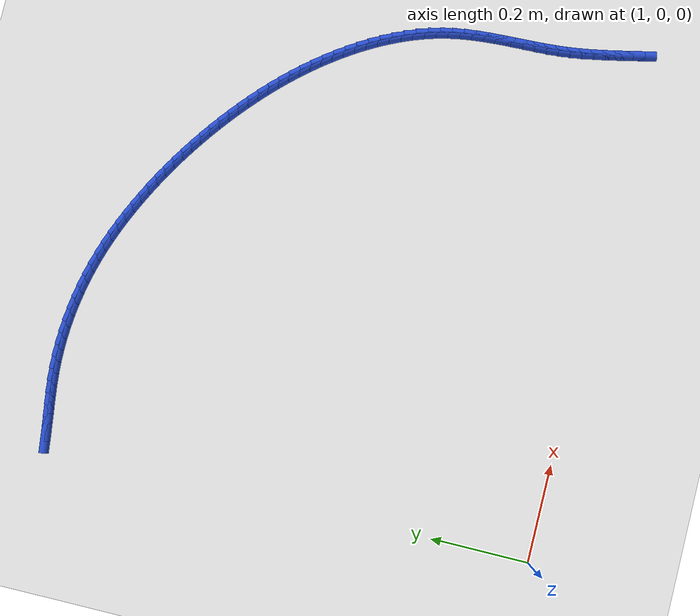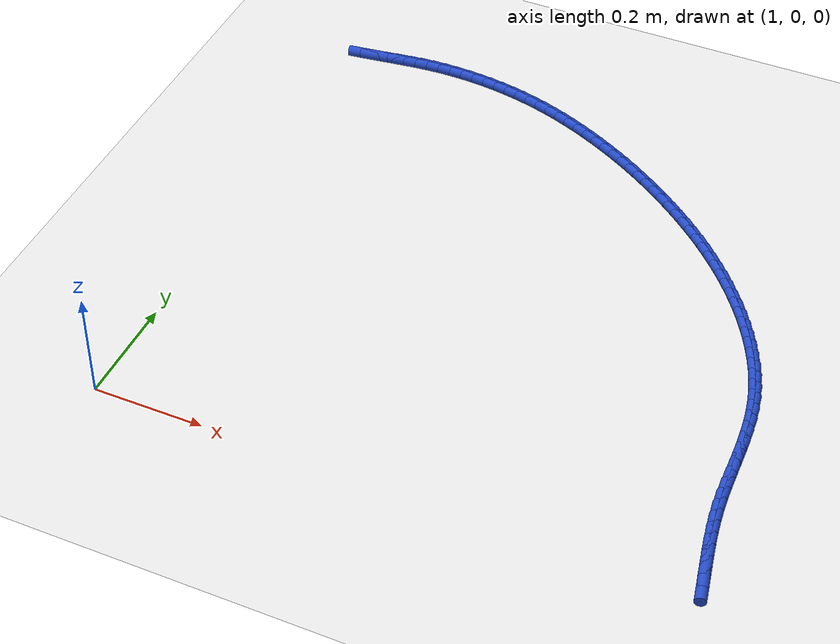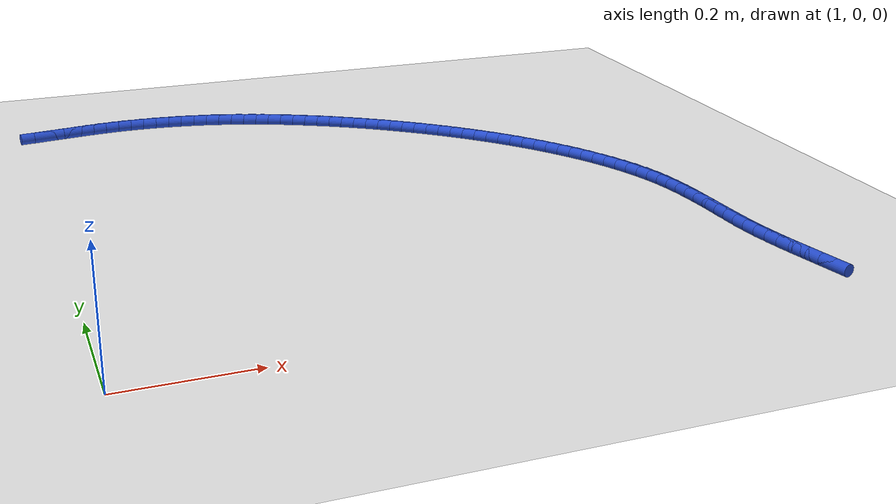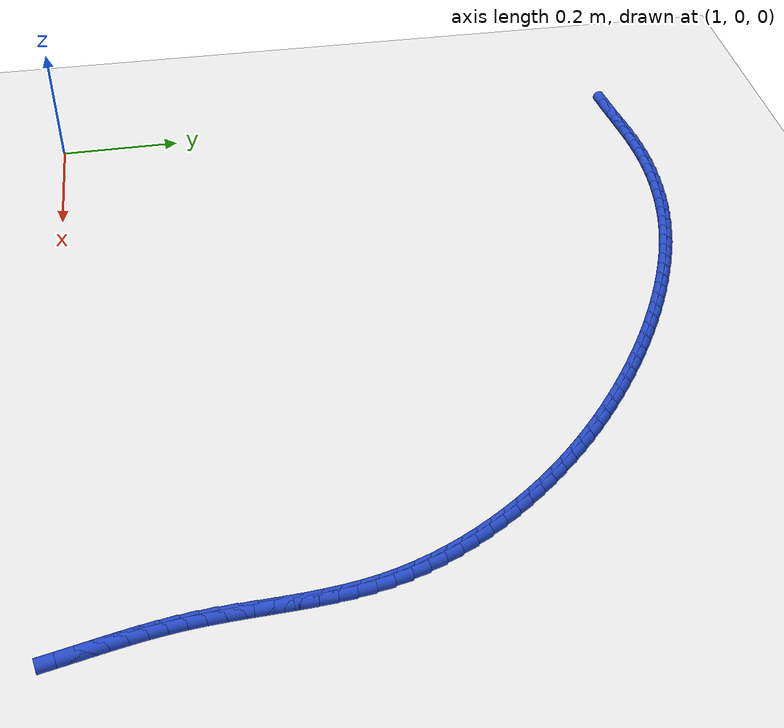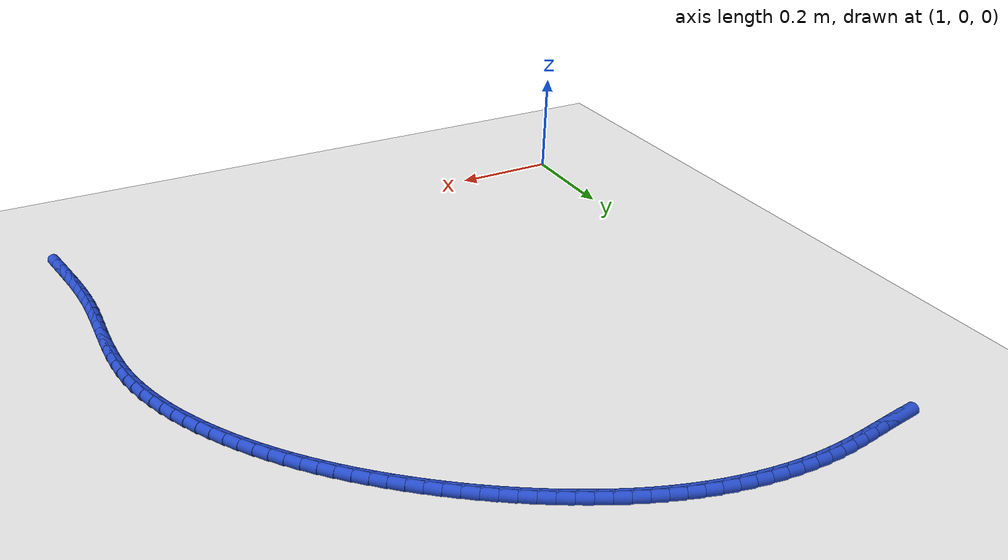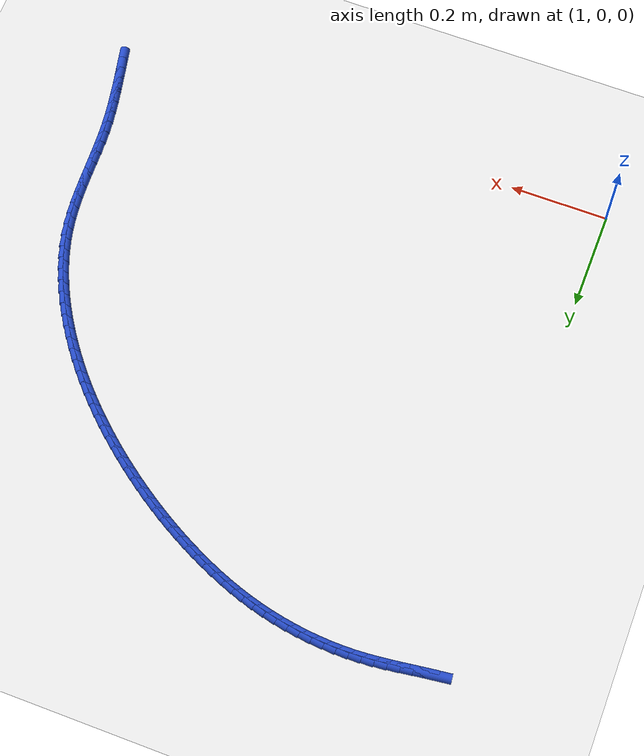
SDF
<sdf version="1.6">
 <world name="default">
  <model name="ground_plane">
   <static>1</static>
   <link name="link">
    <collision name="collision">
     <geometry><plane><normal>0 0 1</normal><size>100 100</size></plane></geometry>
     <surface><friction><ode><mu>100</mu><mu2>50</mu2></ode></friction></surface>
    </collision>
    <visual name="visual">
     <cast_shadows>0</cast_shadows>
     <geometry><plane><normal>0 0 1</normal><size>100 100</size></plane></geometry>
     <material>
      <script><uri>file://media/materials/scripts/gazebo.material</uri><name>Gazebo/WhiteGlow</name></script>
     </material>
    </visual>
   </link>
  </model>
  <model name="line">
   <link name="link_67">
    <pose>1.0223210116440298 0.9987011947655052 0.01 0 1.57 0.12675883229389698</pose>
    <collision name="collision">
     <geometry><cylinder><radius>0.01</radius><length>0.08</length></cylinder></geometry>
    </collision>
    <visual name="visual">
     <material>
      <script><name>Gazebo/Blue</name><uri>file://media/materials/scripts/gazebo.material</uri></script>
     </material>
     <geometry><cylinder><radius>0.01</radius><length>0.08</length></cylinder></geometry>
    </visual>
   </link>
   <link name="link_68">
    <pose>1.0463399600004577 1.0017622208540045 0.01 0 1.57 0.13413237032126427</pose>
    <collision name="collision">
     <geometry><cylinder><radius>0.01</radius><length>0.08</length></cylinder></geometry>
    </collision>
    <visual name="visual">
     <material>
      <script><name>Gazebo/Blue</name><uri>file://media/materials/scripts/gazebo.material</uri></script>
     </material>
     <geometry><cylinder><radius>0.01</radius><length>0.08</length></cylinder></geometry>
    </visual>
   </link>
   <link name="link_69">
    <pose>1.0702678852929923 1.0049911176809554 0.01 0 1.57 0.13106515166974297</pose>
    <collision name="collision">
     <geometry><cylinder><radius>0.01</radius><length>0.08</length></cylinder></geometry>
    </collision>
    <visual name="visual">
     <material>
      <script><name>Gazebo/Blue</name><uri>file://media/materials/scripts/gazebo.material</uri></script>
     </material>
     <geometry><cylinder><radius>0.01</radius><length>0.08</length></cylinder></geometry>
    </visual>
   </link>
   <link name="link_70">
    <pose>1.0941637918392082 1.0081410958390793 0.01 0 1.57 0.11751328469925262</pose>
    <collision name="collision">
     <geometry><cylinder><radius>0.01</radius><length>0.08</length></cylinder></geometry>
    </collision>
    <visual name="visual">
     <material>
      <script><name>Gazebo/Blue</name><uri>file://media/materials/scripts/gazebo.material</uri></script>
     </material>
     <geometry><cylinder><radius>0.01</radius><length>0.08</length></cylinder></geometry>
    </visual>
   </link>
   <link name="link_71">
    <pose>1.1180866839566808 1.010965365921096 0.01 0 1.57 0.09351558838796674</pose>
    <collision name="collision">
     <geometry><cylinder><radius>0.01</radius><length>0.08</length></cylinder></geometry>
    </collision>
    <visual name="visual">
     <material>
      <script><name>Gazebo/Blue</name><uri>file://media/materials/scripts/gazebo.material</uri></script>
     </material>
     <geometry><cylinder><radius>0.01</radius><length>0.08</length></cylinder></geometry>
    </visual>
   </link>
   <link name="link_72">
    <pose>1.1420955659629843 1.0132171385197275 0.01 0 1.57 0.05943513696736095</pose>
    <collision name="collision">
     <geometry><cylinder><radius>0.01</radius><length>0.08</length></cylinder></geometry>
    </collision>
    <visual name="visual">
     <material>
      <script><name>Gazebo/Blue</name><uri>file://media/materials/scripts/gazebo.material</uri></script>
     </material>
     <geometry><cylinder><radius>0.01</radius><length>0.08</length></cylinder></geometry>
    </visual>
   </link>
   <link name="link_73">
    <pose>1.166247492413443 1.0146543042546685 0.01 0 1.57 0.02066032458123422</pose>
    <collision name="collision">
     <geometry><cylinder><radius>0.01</radius><length>0.08</length></cylinder></geometry>
    </collision>
    <visual name="visual">
     <material>
      <script><name>Gazebo/Blue</name><uri>file://media/materials/scripts/gazebo.material</uri></script>
     </material>
     <geometry><cylinder><radius>0.01</radius><length>0.08</length></cylinder></geometry>
    </visual>
   </link>
   <link name="link_74">
    <pose>1.19054881799123 1.0151564489775526 0.01 0 1.57 -0.017341846930867152</pose>
    <collision name="collision">
     <geometry><cylinder><radius>0.01</radius><length>0.08</length></cylinder></geometry>
    </collision>
    <visual name="visual">
     <material>
      <script><name>Gazebo/Blue</name><uri>file://media/materials/scripts/gazebo.material</uri></script>
     </material>
     <geometry><cylinder><radius>0.01</radius><length>0.08</length></cylinder></geometry>
    </visual>
   </link>
   <link name="link_75">
    <pose>1.2149517139981316 1.0147332152617599 0.01 0 1.57 -0.05444093672511951</pose>
    <collision name="collision">
     <geometry><cylinder><radius>0.01</radius><length>0.08</length></cylinder></geometry>
    </collision>
    <visual name="visual">
     <material>
      <script><name>Gazebo/Blue</name><uri>file://media/materials/scripts/gazebo.material</uri></script>
     </material>
     <geometry><cylinder><radius>0.01</radius><length>0.08</length></cylinder></geometry>
    </visual>
   </link>
   <link name="link_76">
    <pose>1.2394057043072917 1.0134006003208098 0.01 0 1.57 -0.0907755837551149</pose>
    <collision name="collision">
     <geometry><cylinder><radius>0.01</radius><length>0.08</length></cylinder></geometry>
    </collision>
    <visual name="visual">
     <material>
      <script><name>Gazebo/Blue</name><uri>file://media/materials/scripts/gazebo.material</uri></script>
     </material>
     <geometry><cylinder><radius>0.01</radius><length>0.08</length></cylinder></geometry>
    </visual>
   </link>
   <link name="link_77">
    <pose>1.2638603127918537 1.0111746013682232 0.01 0 1.57 -0.12648432738134088</pose>
    <collision name="collision">
     <geometry><cylinder><radius>0.01</radius><length>0.08</length></cylinder></geometry>
    </collision>
    <visual name="visual">
     <material>
      <script><name>Gazebo/Blue</name><uri>file://media/materials/scripts/gazebo.material</uri></script>
     </material>
     <geometry><cylinder><radius>0.01</radius><length>0.08</length></cylinder></geometry>
    </visual>
   </link>
   <link name="link_78">
    <pose>1.2882650633249617 1.0080712156175204 0.01 0 1.57 -0.16170547013847694</pose>
    <collision name="collision">
     <geometry><cylinder><radius>0.01</radius><length>0.08</length></cylinder></geometry>
    </collision>
    <visual name="visual">
     <material>
      <script><name>Gazebo/Blue</name><uri>file://media/materials/scripts/gazebo.material</uri></script>
     </material>
     <geometry><cylinder><radius>0.01</radius><length>0.08</length></cylinder></geometry>
    </visual>
   </link>
   <link name="link_79">
    <pose>1.3125694797797596 1.0041064402822222 0.01 0 1.57 -0.19657720367277795</pose>
    <collision name="collision">
     <geometry><cylinder><radius>0.01</radius><length>0.08</length></cylinder></geometry>
    </collision>
    <visual name="visual">
     <material>
      <script><name>Gazebo/Blue</name><uri>file://media/materials/scripts/gazebo.material</uri></script>
     </material>
     <geometry><cylinder><radius>0.01</radius><length>0.08</length></cylinder></geometry>
    </visual>
   </link>
   <link name="link_80">
    <pose>1.3367230860293904 0.9992962725758491 0.01 0 1.57 -0.23123793736708653</pose>
    <collision name="collision">
     <geometry><cylinder><radius>0.01</radius><length>0.08</length></cylinder></geometry>
    </collision>
    <visual name="visual">
     <material>
      <script><name>Gazebo/Blue</name><uri>file://media/materials/scripts/gazebo.material</uri></script>
     </material>
     <geometry><cylinder><radius>0.01</radius><length>0.08</length></cylinder></geometry>
    </visual>
   </link>
   <link name="link_81">
    <pose>1.3606754059469992 0.9936567097119211 0.01 0 1.57 -0.26582677831998064</pose>
    <collision name="collision">
     <geometry><cylinder><radius>0.01</radius><length>0.08</length></cylinder></geometry>
    </collision>
    <visual name="visual">
     <material>
      <script><name>Gazebo/Blue</name><uri>file://media/materials/scripts/gazebo.material</uri></script>
     </material>
     <geometry><cylinder><radius>0.01</radius><length>0.08</length></cylinder></geometry>
    </visual>
   </link>
   <link name="link_82">
    <pose>1.3843759634057289 0.9872037489039587 0.01 0 1.57 -0.3003779266260646</pose>
    <collision name="collision">
     <geometry><cylinder><radius>0.01</radius><length>0.08</length></cylinder></geometry>
    </collision>
    <visual name="visual">
     <material>
      <script><name>Gazebo/Blue</name><uri>file://media/materials/scripts/gazebo.material</uri></script>
     </material>
     <geometry><cylinder><radius>0.01</radius><length>0.08</length></cylinder></geometry>
    </visual>
   </link>
   <link name="link_83">
    <pose>1.4077774732487403 0.9799551221489016 0.01 0 1.57 -0.3337257662392503</pose>
    <collision name="collision">
     <geometry><cylinder><radius>0.01</radius><length>0.08</length></cylinder></geometry>
    </collision>
    <visual name="visual">
     <material>
      <script><name>Gazebo/Blue</name><uri>file://media/materials/scripts/gazebo.material</uri></script>
     </material>
     <geometry><cylinder><radius>0.01</radius><length>0.08</length></cylinder></geometry>
    </visual>
   </link>
   <link name="link_84">
    <pose>1.4308702649676968 0.9719490107955119 0.01 0 1.57 -0.3650044388943449</pose>
    <collision name="collision">
     <geometry><cylinder><radius>0.01</radius><length>0.08</length></cylinder></geometry>
    </collision>
    <visual name="visual">
     <material>
      <script><name>Gazebo/Blue</name><uri>file://media/materials/scripts/gazebo.material</uri></script>
     </material>
     <geometry><cylinder><radius>0.01</radius><length>0.08</length></cylinder></geometry>
    </visual>
   </link>
   <link name="link_85">
    <pose>1.453669184606701 0.9632369247128563 0.01 0 1.57 -0.39414239050209127</pose>
    <collision name="collision">
     <geometry><cylinder><radius>0.01</radius><length>0.08</length></cylinder></geometry>
    </collision>
    <visual name="visual">
     <material>
      <script><name>Gazebo/Blue</name><uri>file://media/materials/scripts/gazebo.material</uri></script>
     </material>
     <geometry><cylinder><radius>0.01</radius><length>0.08</length></cylinder></geometry>
    </visual>
   </link>
   <link name="link_86">
    <pose>1.4761894981548054 0.9538706020747276 0.01 0 1.57 -0.4211032966922181</pose>
    <collision name="collision">
     <geometry><cylinder><radius>0.01</radius><length>0.08</length></cylinder></geometry>
    </collision>
    <visual name="visual">
     <material>
      <script><name>Gazebo/Blue</name><uri>file://media/materials/scripts/gazebo.material</uri></script>
     </material>
     <geometry><cylinder><radius>0.01</radius><length>0.08</length></cylinder></geometry>
    </visual>
   </link>
   <link name="link_87">
    <pose>1.4984464716010635 0.9439017810549196 0.01 0 1.57 -0.44589419809830744</pose>
    <collision name="collision">
     <geometry><cylinder><radius>0.01</radius><length>0.08</length></cylinder></geometry>
    </collision>
    <visual name="visual">
     <material>
      <script><name>Gazebo/Blue</name><uri>file://media/materials/scripts/gazebo.material</uri></script>
     </material>
     <geometry><cylinder><radius>0.01</radius><length>0.08</length></cylinder></geometry>
    </visual>
   </link>
   <link name="link_88">
    <pose>1.5204550493669053 0.9333816544295549 0.01 0 1.57 -0.46931882824278603</pose>
    <collision name="collision">
     <geometry><cylinder><radius>0.01</radius><length>0.08</length></cylinder></geometry>
    </collision>
    <visual name="visual">
     <material>
      <script><name>Gazebo/Blue</name><uri>file://media/materials/scripts/gazebo.material</uri></script>
     </material>
     <geometry><cylinder><radius>0.01</radius><length>0.08</length></cylinder></geometry>
    </visual>
   </link>
   <link name="link_89">
    <pose>1.542220131783818 0.9223443796053228 0.01 0 1.57 -0.49233313516831084</pose>
    <collision name="collision">
     <geometry><cylinder><radius>0.01</radius><length>0.08</length></cylinder></geometry>
    </collision>
    <visual name="visual">
     <material>
      <script><name>Gazebo/Blue</name><uri>file://media/materials/scripts/gazebo.material</uri></script>
     </material>
     <geometry><cylinder><radius>0.01</radius><length>0.08</length></cylinder></geometry>
    </visual>
   </link>
   <link name="link_90">
    <pose>1.5637348378372213 0.9108041321305457 0.01 0 1.57 -0.5150032004783909</pose>
    <collision name="collision">
     <geometry><cylinder><radius>0.01</radius><length>0.08</length></cylinder></geometry>
    </collision>
    <visual name="visual">
     <material>
      <script><name>Gazebo/Blue</name><uri>file://media/materials/scripts/gazebo.material</uri></script>
     </material>
     <geometry><cylinder><radius>0.01</radius><length>0.08</length></cylinder></geometry>
    </visual>
   </link>
   <link name="link_91">
    <pose>1.58499161471928 0.8987739481525304 0.01 0 1.57 -0.5373420953849466</pose>
    <collision name="collision">
     <geometry><cylinder><radius>0.01</radius><length>0.08</length></cylinder></geometry>
    </collision>
    <visual name="visual">
     <material>
      <script><name>Gazebo/Blue</name><uri>file://media/materials/scripts/gazebo.material</uri></script>
     </material>
     <geometry><cylinder><radius>0.01</radius><length>0.08</length></cylinder></geometry>
    </visual>
   </link>
   <link name="link_92">
    <pose>1.605982909622159 0.8862668638185824 0.01 0 1.57 -0.5593637867107443</pose>
    <collision name="collision">
     <geometry><cylinder><radius>0.01</radius><length>0.08</length></cylinder></geometry>
    </collision>
    <visual name="visual">
     <material>
      <script><name>Gazebo/Blue</name><uri>file://media/materials/scripts/gazebo.material</uri></script>
     </material>
     <geometry><cylinder><radius>0.01</radius><length>0.08</length></cylinder></geometry>
    </visual>
   </link>
   <link name="link_93">
    <pose>1.6267011697380238 0.873295915276009 0.01 0 1.57 -0.5810830343191683</pose>
    <collision name="collision">
     <geometry><cylinder><radius>0.01</radius><length>0.08</length></cylinder></geometry>
    </collision>
    <visual name="visual">
     <material>
      <script><name>Gazebo/Blue</name><uri>file://media/materials/scripts/gazebo.material</uri></script>
     </material>
     <geometry><cylinder><radius>0.01</radius><length>0.08</length></cylinder></geometry>
    </visual>
   </link>
   <link name="link_94">
    <pose>1.6471388422590383 0.8598741386721162 0.01 0 1.57 -0.6025152991556864</pose>
    <collision name="collision">
     <geometry><cylinder><radius>0.01</radius><length>0.08</length></cylinder></geometry>
    </collision>
    <visual name="visual">
     <material>
      <script><name>Gazebo/Blue</name><uri>file://media/materials/scripts/gazebo.material</uri></script>
     </material>
     <geometry><cylinder><radius>0.01</radius><length>0.08</length></cylinder></geometry>
    </visual>
   </link>
   <link name="link_95">
    <pose>1.6672883743773672 0.84601457015421 0.01 0 1.57 -0.6236766618012255</pose>
    <collision name="collision">
     <geometry><cylinder><radius>0.01</radius><length>0.08</length></cylinder></geometry>
    </collision>
    <visual name="visual">
     <material>
      <script><name>Gazebo/Blue</name><uri>file://media/materials/scripts/gazebo.material</uri></script>
     </material>
     <geometry><cylinder><radius>0.01</radius><length>0.08</length></cylinder></geometry>
    </visual>
   </link>
   <link name="link_96">
    <pose>1.6871422132851759 0.8317302458695974 0.01 0 1.57 -0.644583751291482</pose>
    <collision name="collision">
     <geometry><cylinder><radius>0.01</radius><length>0.08</length></cylinder></geometry>
    </collision>
    <visual name="visual">
     <material>
      <script><name>Gazebo/Blue</name><uri>file://media/materials/scripts/gazebo.material</uri></script>
     </material>
     <geometry><cylinder><radius>0.01</radius><length>0.08</length></cylinder></geometry>
    </visual>
   </link>
   <link name="link_97">
    <pose>1.7066928061746287 0.8170342019655843 0.01 0 1.57 -0.6653749624422243</pose>
    <collision name="collision">
     <geometry><cylinder><radius>0.01</radius><length>0.08</length></cylinder></geometry>
    </collision>
    <visual name="visual">
     <material>
      <script><name>Gazebo/Blue</name><uri>file://media/materials/scripts/gazebo.material</uri></script>
     </material>
     <geometry><cylinder><radius>0.01</radius><length>0.08</length></cylinder></geometry>
    </visual>
   </link>
   <link name="link_98">
    <pose>1.7259308931000732 0.8019370442740026 0.01 0 1.57 -0.6868089096223572</pose>
    <collision name="collision">
     <geometry><cylinder><radius>0.01</radius><length>0.08</length></cylinder></geometry>
    </collision>
    <visual name="visual">
     <material>
      <script><name>Gazebo/Blue</name><uri>file://media/materials/scripts/gazebo.material</uri></script>
     </material>
     <geometry><cylinder><radius>0.01</radius><length>0.08</length></cylinder></geometry>
    </visual>
   </link>
   <link name="link_99">
    <pose>1.7448367661608621 0.7864345047093959 0.01 0 1.57 -0.7091796138751195</pose>
    <collision name="collision">
     <geometry><cylinder><radius>0.01</radius><length>0.08</length></cylinder></geometry>
    </collision>
    <visual name="visual">
     <material>
      <script><name>Gazebo/Blue</name><uri>file://media/materials/scripts/gazebo.material</uri></script>
     </material>
     <geometry><cylinder><radius>0.01</radius><length>0.08</length></cylinder></geometry>
    </visual>
   </link>
   <link name="link_100">
    <pose>1.7633867663661058 0.7705166903353647 0.01 0 1.57 -0.7324981163090032</pose>
    <collision name="collision">
     <geometry><cylinder><radius>0.01</radius><length>0.08</length></cylinder></geometry>
    </collision>
    <visual name="visual">
     <material>
      <script><name>Gazebo/Blue</name><uri>file://media/materials/scripts/gazebo.material</uri></script>
     </material>
     <geometry><cylinder><radius>0.01</radius><length>0.08</length></cylinder></geometry>
    </visual>
   </link>
   <link name="link_101">
    <pose>1.7815572273277123 0.7541736976847087 0.01 0 1.57 -0.756771697080544</pose>
    <collision name="collision">
     <geometry><cylinder><radius>0.01</radius><length>0.08</length></cylinder></geometry>
    </collision>
    <visual name="visual">
     <material>
      <script><name>Gazebo/Blue</name><uri>file://media/materials/scripts/gazebo.material</uri></script>
     </material>
     <geometry><cylinder><radius>0.01</radius><length>0.08</length></cylinder></geometry>
    </visual>
   </link>
   <link name="link_102">
    <pose>1.7993244826575918 0.7373956232902278 0.01 0 1.57 -0.7820037314759857</pose>
    <collision name="collision">
     <geometry><cylinder><radius>0.01</radius><length>0.08</length></cylinder></geometry>
    </collision>
    <visual name="visual">
     <material>
      <script><name>Gazebo/Blue</name><uri>file://media/materials/scripts/gazebo.material</uri></script>
     </material>
     <geometry><cylinder><radius>0.01</radius><length>0.08</length></cylinder></geometry>
    </visual>
   </link>
   <link name="link_103">
    <pose>1.8166648659676543 0.7201725636847217 0.01 0 1.57 -0.8081929907101069</pose>
    <collision name="collision">
     <geometry><cylinder><radius>0.01</radius><length>0.08</length></cylinder></geometry>
    </collision>
    <visual name="visual">
     <material>
      <script><name>Gazebo/Blue</name><uri>file://media/materials/scripts/gazebo.material</uri></script>
     </material>
     <geometry><cylinder><radius>0.01</radius><length>0.08</length></cylinder></geometry>
    </visual>
   </link>
   <link name="link_104">
    <pose>1.8335547108698085 0.7024946154009905 0.01 0 1.57 -0.835332927714726</pose>
    <collision name="collision">
     <geometry><cylinder><radius>0.01</radius><length>0.08</length></cylinder></geometry>
    </collision>
    <visual name="visual">
     <material>
      <script><name>Gazebo/Blue</name><uri>file://media/materials/scripts/gazebo.material</uri></script>
     </material>
     <geometry><cylinder><radius>0.01</radius><length>0.08</length></cylinder></geometry>
    </visual>
   </link>
   <link name="link_105">
    <pose>1.8499703509759649 0.6843518749718339 0.01 0 1.57 -0.8634109673359305</pose>
    <collision name="collision">
     <geometry><cylinder><radius>0.01</radius><length>0.08</length></cylinder></geometry>
    </collision>
    <visual name="visual">
     <material>
      <script><name>Gazebo/Blue</name><uri>file://media/materials/scripts/gazebo.material</uri></script>
     </material>
     <geometry><cylinder><radius>0.01</radius><length>0.08</length></cylinder></geometry>
    </visual>
   </link>
   <link name="link_106">
    <pose>1.8658881198980324 0.6657344389300519 0.01 0 1.57 -0.8924078251117179</pose>
    <collision name="collision">
     <geometry><cylinder><radius>0.01</radius><length>0.08</length></cylinder></geometry>
    </collision>
    <visual name="visual">
     <material>
      <script><name>Gazebo/Blue</name><uri>file://media/materials/scripts/gazebo.material</uri></script>
     </material>
     <geometry><cylinder><radius>0.01</radius><length>0.08</length></cylinder></geometry>
    </visual>
   </link>
   <link name="link_107">
    <pose>1.8812843512479207 0.6466324038084443 0.01 0 1.57 -0.9222968832881427</pose>
    <collision name="collision">
     <geometry><cylinder><radius>0.01</radius><length>0.08</length></cylinder></geometry>
    </collision>
    <visual name="visual">
     <material>
      <script><name>Gazebo/Blue</name><uri>file://media/materials/scripts/gazebo.material</uri></script>
     </material>
     <geometry><cylinder><radius>0.01</radius><length>0.08</length></cylinder></geometry>
    </visual>
   </link>
   <link name="link_108">
    <pose>1.8961353786375386 0.6270358661398109 0.01 0 1.57 -0.9530963444173097</pose>
    <collision name="collision">
     <geometry><cylinder><radius>0.01</radius><length>0.08</length></cylinder></geometry>
    </collision>
    <visual name="visual">
     <material>
      <script><name>Gazebo/Blue</name><uri>file://media/materials/scripts/gazebo.material</uri></script>
     </material>
     <geometry><cylinder><radius>0.01</radius><length>0.08</length></cylinder></geometry>
    </visual>
   </link>
   <link name="link_109">
    <pose>1.9104144669357965 0.6069369987118872 0.01 0 1.57 -0.9853406122910608</pose>
    <collision name="collision">
     <geometry><cylinder><radius>0.01</radius><length>0.08</length></cylinder></geometry>
    </collision>
    <visual name="visual">
     <material>
      <script><name>Gazebo/Blue</name><uri>file://media/materials/scripts/gazebo.material</uri></script>
     </material>
     <geometry><cylinder><radius>0.01</radius><length>0.08</length></cylinder></geometry>
    </visual>
   </link>
   <link name="link_110">
    <pose>1.9240644992591167 0.5863485300459886 0.01 0 1.57 -1.0194705394944577</pose>
    <collision name="collision">
     <geometry><cylinder><radius>0.01</radius><length>0.08</length></cylinder></geometry>
    </collision>
    <visual name="visual">
     <material>
      <script><name>Gazebo/Blue</name><uri>file://media/materials/scripts/gazebo.material</uri></script>
     </material>
     <geometry><cylinder><radius>0.01</radius><length>0.08</length></cylinder></geometry>
    </visual>
   </link>
   <link name="link_111">
    <pose>1.937011009167424 0.5652949270534817 0.01 0 1.57 -1.0556591144668415</pose>
    <collision name="collision">
     <geometry><cylinder><radius>0.01</radius><length>0.08</length></cylinder></geometry>
    </collision>
    <visual name="visual">
     <material>
      <script><name>Gazebo/Blue</name><uri>file://media/materials/scripts/gazebo.material</uri></script>
     </material>
     <geometry><cylinder><radius>0.01</radius><length>0.08</length></cylinder></geometry>
    </visual>
   </link>
   <link name="link_112">
    <pose>1.9491793272493823 0.5438007939723464 0.01 0 1.57 -1.0940752404317653</pose>
    <collision name="collision">
     <geometry><cylinder><radius>0.01</radius><length>0.08</length></cylinder></geometry>
    </collision>
    <visual name="visual">
     <material>
      <script><name>Gazebo/Blue</name><uri>file://media/materials/scripts/gazebo.material</uri></script>
     </material>
     <geometry><cylinder><radius>0.01</radius><length>0.08</length></cylinder></geometry>
    </visual>
   </link>
   <link name="link_113">
    <pose>1.9604947840936546 0.5218907350405629 0.01 0 1.57 -1.1348831772757544</pose>
    <collision name="collision">
     <geometry><cylinder><radius>0.01</radius><length>0.08</length></cylinder></geometry>
    </collision>
    <visual name="visual">
     <material>
      <script><name>Gazebo/Blue</name><uri>file://media/materials/scripts/gazebo.material</uri></script>
     </material>
     <geometry><cylinder><radius>0.01</radius><length>0.08</length></cylinder></geometry>
    </visual>
   </link>
   <link name="link_114">
    <pose>1.9708827102889046 0.4995893544961102 0.01 0 1.57 -1.178236855176652</pose>
    <collision name="collision">
     <geometry><cylinder><radius>0.01</radius><length>0.08</length></cylinder></geometry>
    </collision>
    <visual name="visual">
     <material>
      <script><name>Gazebo/Blue</name><uri>file://media/materials/scripts/gazebo.material</uri></script>
     </material>
     <geometry><cylinder><radius>0.01</radius><length>0.08</length></cylinder></geometry>
    </visual>
   </link>
   <link name="link_115">
    <pose>1.9802684364237957 0.4769212565769684 0.01 0 1.57 -1.2242723108310165</pose>
    <collision name="collision">
     <geometry><cylinder><radius>0.01</radius><length>0.08</length></cylinder></geometry>
    </collision>
    <visual name="visual">
     <material>
      <script><name>Gazebo/Blue</name><uri>file://media/materials/scripts/gazebo.material</uri></script>
     </material>
     <geometry><cylinder><radius>0.01</radius><length>0.08</length></cylinder></geometry>
    </visual>
   </link>
   <link name="link_116">
    <pose>1.9885772930869918 0.45391104552111733 0.01 0 1.57 -1.2730981090453088</pose>
    <collision name="collision">
     <geometry><cylinder><radius>0.01</radius><length>0.08</length></cylinder></geometry>
    </collision>
    <visual name="visual">
     <material>
      <script><name>Gazebo/Blue</name><uri>file://media/materials/scripts/gazebo.material</uri></script>
     </material>
     <geometry><cylinder><radius>0.01</radius><length>0.08</length></cylinder></geometry>
    </visual>
   </link>
   <link name="link_117">
    <pose>1.9957346108671565 0.4305833255665368 0.01 0 1.57 -1.3247838068732176</pose>
    <collision name="collision">
     <geometry><cylinder><radius>0.01</radius><length>0.08</length></cylinder></geometry>
    </collision>
    <visual name="visual">
     <material>
      <script><name>Gazebo/Blue</name><uri>file://media/materials/scripts/gazebo.material</uri></script>
     </material>
     <geometry><cylinder><radius>0.01</radius><length>0.08</length></cylinder></geometry>
    </visual>
   </link>
   <link name="link_118">
    <pose>2.001665720352953 0.40696270095120674 0.01 0 1.57 -1.3786220671633356</pose>
    <collision name="collision">
     <geometry><cylinder><radius>0.01</radius><length>0.08</length></cylinder></geometry>
    </collision>
    <visual name="visual">
     <material>
      <script><name>Gazebo/Blue</name><uri>file://media/materials/scripts/gazebo.material</uri></script>
     </material>
     <geometry><cylinder><radius>0.01</radius><length>0.08</length></cylinder></geometry>
    </visual>
   </link>
   <link name="link_119">
    <pose>2.0063136217744657 0.3830753034996912 0.01 0 1.57 -1.4273004242457832</pose>
    <collision name="collision">
     <geometry><cylinder><radius>0.01</radius><length>0.08</length></cylinder></geometry>
    </collision>
    <visual name="visual">
     <material>
      <script><name>Gazebo/Blue</name><uri>file://media/materials/scripts/gazebo.material</uri></script>
     </material>
     <geometry><cylinder><radius>0.01</radius><length>0.08</length></cylinder></geometry>
    </visual>
   </link>
   <link name="link_120">
    <pose>2.009797655052008 0.3589625100626806 0.01 0 1.57 -1.46656287493694</pose>
    <collision name="collision">
     <geometry><cylinder><radius>0.01</radius><length>0.08</length></cylinder></geometry>
    </collision>
    <visual name="visual">
     <material>
      <script><name>Gazebo/Blue</name><uri>file://media/materials/scripts/gazebo.material</uri></script>
     </material>
     <geometry><cylinder><radius>0.01</radius><length>0.08</length></cylinder></geometry>
    </visual>
   </link>
   <link name="link_121">
    <pose>2.0123384909816555 0.3346744578093521 0.01 0 1.57 -1.4964033741091256</pose>
    <collision name="collision">
     <geometry><cylinder><radius>0.01</radius><length>0.08</length></cylinder></geometry>
    </collision>
    <visual name="visual">
     <material>
      <script><name>Gazebo/Blue</name><uri>file://media/materials/scripts/gazebo.material</uri></script>
     </material>
     <geometry><cylinder><radius>0.01</radius><length>0.08</length></cylinder></geometry>
    </visual>
   </link>
   <link name="link_122">
    <pose>2.014158009130805 0.31026138841031686 0.01 0 1.57 -1.5169408960929869</pose>
    <collision name="collision">
     <geometry><cylinder><radius>0.01</radius><length>0.08</length></cylinder></geometry>
    </collision>
    <visual name="visual">
     <material>
      <script><name>Gazebo/Blue</name><uri>file://media/materials/scripts/gazebo.material</uri></script>
     </material>
     <geometry><cylinder><radius>0.01</radius><length>0.08</length></cylinder></geometry>
    </visual>
   </link>
   <link name="link_123">
    <pose>2.015478089066854 0.28577354353618606 0.01 0 1.57 -1.5282915416685896</pose>
    <collision name="collision">
     <geometry><cylinder><radius>0.01</radius><length>0.08</length></cylinder></geometry>
    </collision>
    <visual name="visual">
     <material>
      <script><name>Gazebo/Blue</name><uri>file://media/materials/scripts/gazebo.material</uri></script>
     </material>
     <geometry><cylinder><radius>0.01</radius><length>0.08</length></cylinder></geometry>
    </visual>
   </link>
   <link name="link_124">
    <pose>2.0165206103571993 0.2612611648575695 0.01 0 1.57 -1.5305169246809016</pose>
    <collision name="collision">
     <geometry><cylinder><radius>0.01</radius><length>0.08</length></cylinder></geometry>
    </collision>
    <visual name="visual">
     <material>
      <script><name>Gazebo/Blue</name><uri>file://media/materials/scripts/gazebo.material</uri></script>
     </material>
     <geometry><cylinder><radius>0.01</radius><length>0.08</length></cylinder></geometry>
    </visual>
   </link>
   <link name="link_125">
    <pose>2.017507452569237 0.23677449404507844 0.01 0 1.57 -1.5235963159622294</pose>
    <collision name="collision">
     <geometry><cylinder><radius>0.01</radius><length>0.08</length></cylinder></geometry>
    </collision>
    <visual name="visual">
     <material>
      <script><name>Gazebo/Blue</name><uri>file://media/materials/scripts/gazebo.material</uri></script>
     </material>
     <geometry><cylinder><radius>0.01</radius><length>0.08</length></cylinder></geometry>
    </visual>
   </link>
   <link name="link_126">
    <pose>2.0186604952703644 0.21236377276932383 0.01 0 1.57 -1.5074202236373284</pose>
    <collision name="collision">
     <geometry><cylinder><radius>0.01</radius><length>0.08</length></cylinder></geometry>
    </collision>
    <visual name="visual">
     <material>
      <script><name>Gazebo/Blue</name><uri>file://media/materials/scripts/gazebo.material</uri></script>
     </material>
     <geometry><cylinder><radius>0.01</radius><length>0.08</length></cylinder></geometry>
    </visual>
   </link>
   <link name="link_127">
    <pose>2.020201618027979 0.1880792427009165 0.01 0 1.57 -1.4818054390961128</pose>
    <collision name="collision">
     <geometry><cylinder><radius>0.01</radius><length>0.08</length></cylinder></geometry>
    </collision>
    <visual name="visual">
     <material>
      <script><name>Gazebo/Blue</name><uri>file://media/materials/scripts/gazebo.material</uri></script>
     </material>
     <geometry><cylinder><radius>0.01</radius><length>0.08</length></cylinder></geometry>
    </visual>
   </link>
   <link name="link_128">
    <pose>2.0223527004094777 0.16397114551046704 0.01 0 1.57 -1.4485431871712473</pose>
    <collision name="collision">
     <geometry><cylinder><radius>0.01</radius><length>0.08</length></cylinder></geometry>
    </collision>
    <visual name="visual">
     <material>
      <script><name>Gazebo/Blue</name><uri>file://media/materials/scripts/gazebo.material</uri></script>
     </material>
     <geometry><cylinder><radius>0.01</radius><length>0.08</length></cylinder></geometry>
    </visual>
   </link>
   <link name="link_129">
    <pose>2.0252886239787746 0.14007578888622887 0.01 0 1.57 -1.4179443050083236</pose>
    <collision name="collision">
     <geometry><cylinder><radius>0.01</radius><length>0.08</length></cylinder></geometry>
    </collision>
    <visual name="visual">
     <material>
      <script><name>Gazebo/Blue</name><uri>file://media/materials/scripts/gazebo.material</uri></script>
     </material>
     <geometry><cylinder><radius>0.01</radius><length>0.08</length></cylinder></geometry>
    </visual>
   </link>
   <link name="link_130">
    <pose>2.028942468160524 0.11635779094471073 0.01 0 1.57 -1.3935458843183606</pose>
    <collision name="collision">
     <geometry><cylinder><radius>0.01</radius><length>0.08</length></cylinder></geometry>
    </collision>
    <visual name="visual">
     <material>
      <script><name>Gazebo/Blue</name><uri>file://media/materials/scripts/gazebo.material</uri></script>
     </material>
     <geometry><cylinder><radius>0.01</radius><length>0.08</length></cylinder></geometry>
    </visual>
   </link>
   <link name="link_131">
    <pose>2.0331697671417928 0.09275877916681148 0.01 0 1.57 -1.375502526345715</pose>
    <collision name="collision">
     <geometry><cylinder><radius>0.01</radius><length>0.08</length></cylinder></geometry>
    </collision>
    <visual name="visual">
     <material>
      <script><name>Gazebo/Blue</name><uri>file://media/materials/scripts/gazebo.material</uri></script>
     </material>
     <geometry><cylinder><radius>0.01</radius><length>0.08</length></cylinder></geometry>
    </visual>
   </link>
   <link name="link_132">
    <pose>2.037826019469857 0.06922037046693448 0.01 0 1.57 -1.3638812639634994</pose>
    <collision name="collision">
     <geometry><cylinder><radius>0.01</radius><length>0.08</length></cylinder></geometry>
    </collision>
    <visual name="visual">
     <material>
      <script><name>Gazebo/Blue</name><uri>file://media/materials/scripts/gazebo.material</uri></script>
     </material>
     <geometry><cylinder><radius>0.01</radius><length>0.08</length></cylinder></geometry>
    </visual>
   </link>
   <link name="link_133">
    <pose>2.042766723691996 0.0456841817594831 0.01 0 1.57 -1.3586839654620473</pose>
    <collision name="collision">
     <geometry><cylinder><radius>0.01</radius><length>0.08</length></cylinder></geometry>
    </collision>
    <visual name="visual">
     <material>
      <script><name>Gazebo/Blue</name><uri>file://media/materials/scripts/gazebo.material</uri></script>
     </material>
     <geometry><cylinder><radius>0.01</radius><length>0.08</length></cylinder></geometry>
    </visual>
   </link>
   <link name="link_134">
    <pose>2.047847378355486 0.022091829958860942 0.01 0 1.57 -1.3598621374733988</pose>
    <collision name="collision">
     <geometry><cylinder><radius>0.01</radius><length>0.08</length></cylinder></geometry>
    </collision>
    <visual name="visual">
     <material>
      <script><name>Gazebo/Blue</name><uri>file://media/materials/scripts/gazebo.material</uri></script>
     </material>
     <geometry><cylinder><radius>0.01</radius><length>0.08</length></cylinder></geometry>
    </visual>
   </link>
  </model>
 </world>
</sdf>
